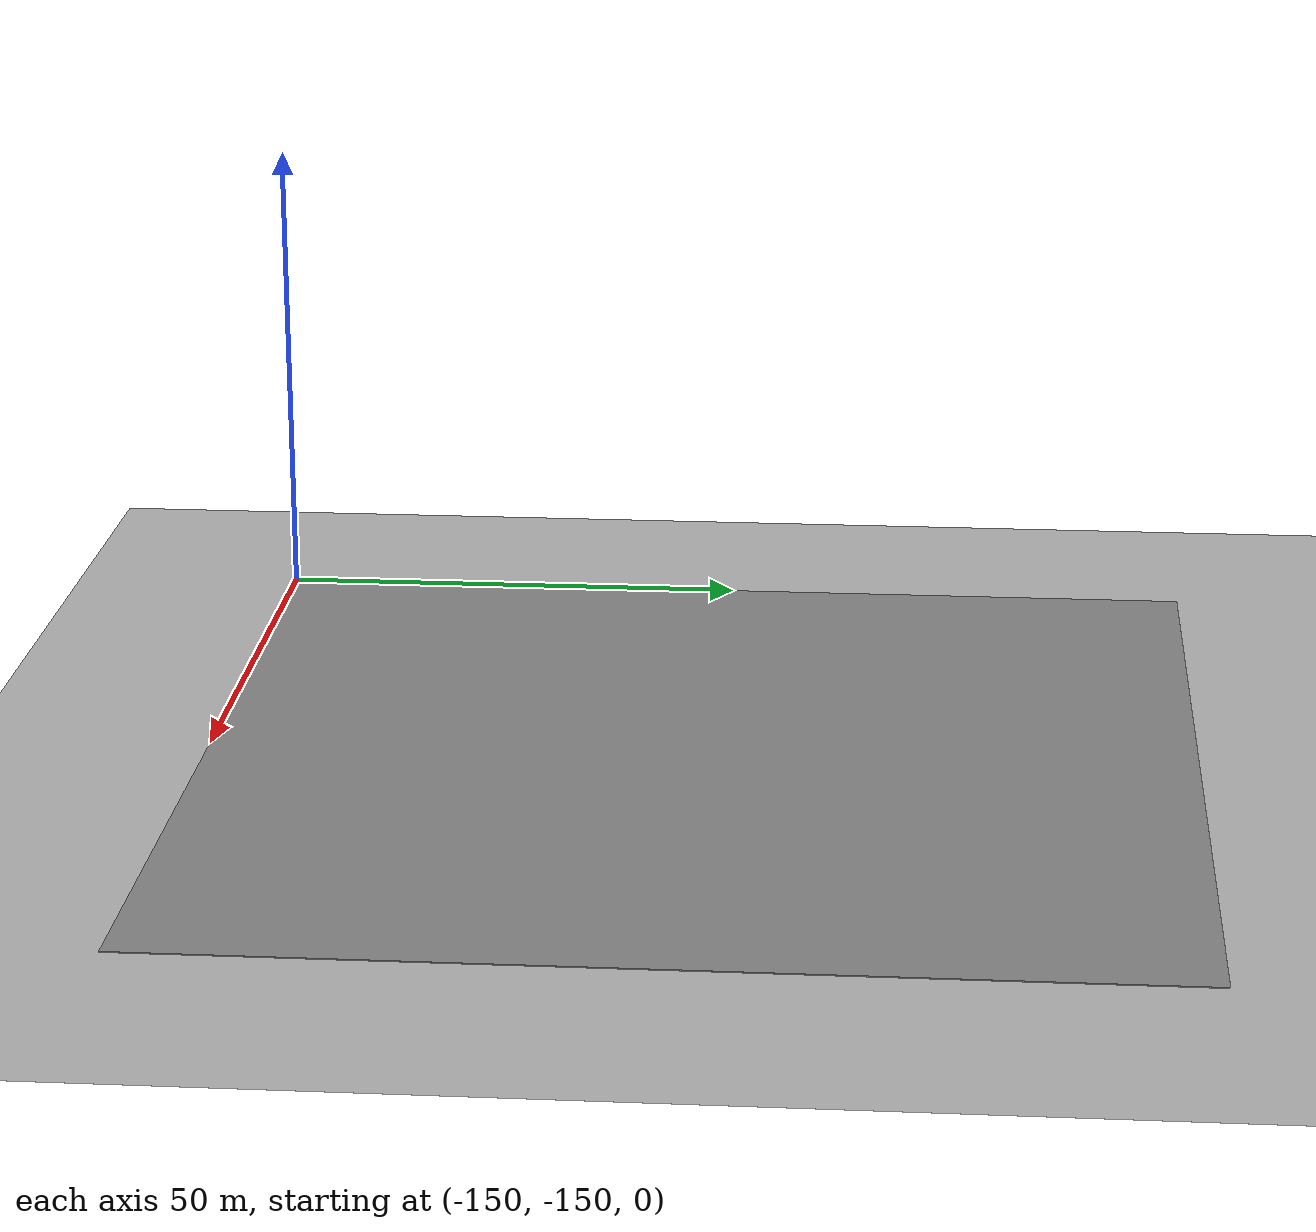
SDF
<sdf version="1.6">
 <world name="default">
  <model name="ground_plane">
   <static>1</static>
   <link name="link">
    <collision name="collision">
     <geometry><plane><normal>0 0 1</normal><size>100 100</size></plane></geometry>
     <surface>
      <contact><collide_bitmask>65535</collide_bitmask></contact>
      <friction><ode><mu>100</mu><mu2>50</mu2></ode></friction>
     </surface>
    </collision>
    <visual name="visual">
     <cast_shadows>0</cast_shadows>
     <geometry><plane><normal>0 0 1</normal><size>100 100</size></plane></geometry>
     <material>
      <script><uri>file://media/materials/scripts/gazebo.material</uri><name>Gazebo/Grey</name></script>
     </material>
    </visual>
   </link>
  </model>
  <model name="ground_plane_4">
   <static>1</static>
   <link name="link">
    <collision name="collision">
     <geometry><plane><normal>0 0 1</normal><size>100 100</size></plane></geometry>
     <surface>
      <contact><collide_bitmask>65535</collide_bitmask></contact>
      <friction><ode><mu>100</mu><mu2>50</mu2></ode></friction>
     </surface>
    </collision>
    <visual name="visual">
     <cast_shadows>0</cast_shadows>
     <geometry><plane><normal>0 0 1</normal><size>100 100</size></plane></geometry>
     <material>
      <script><uri>file://media/materials/scripts/gazebo.material</uri><name>Gazebo/Grey</name></script>
     </material>
    </visual>
   </link>
   <pose>-100 -100 0 0 -0 0</pose>
  </model>
 </world>
</sdf>
